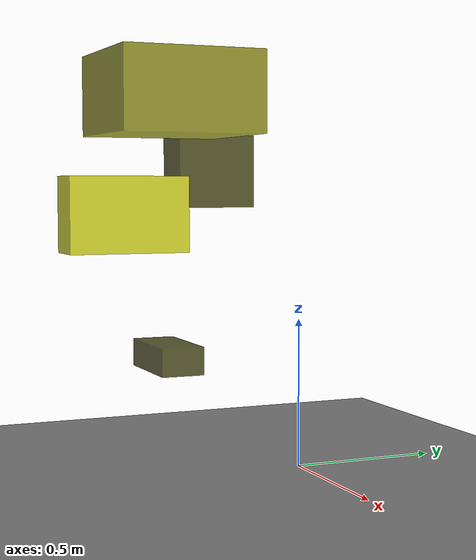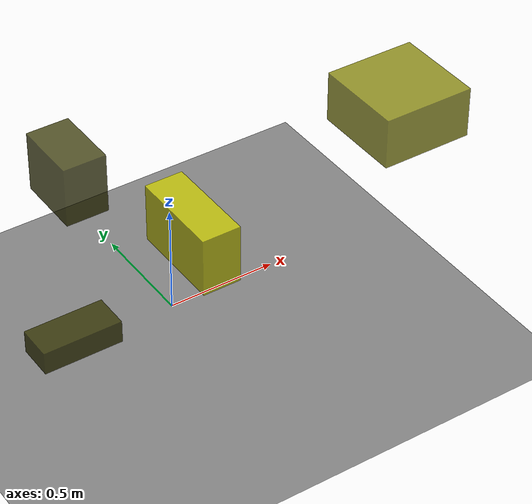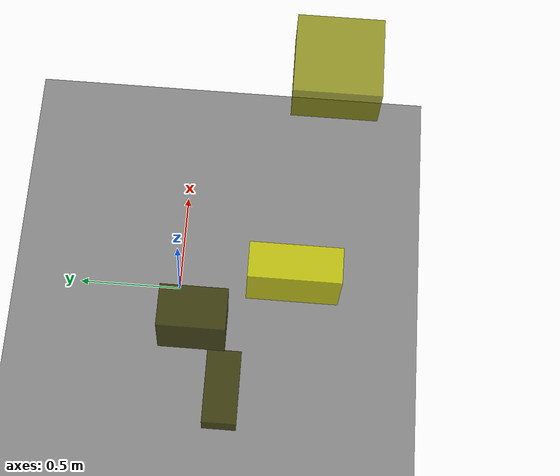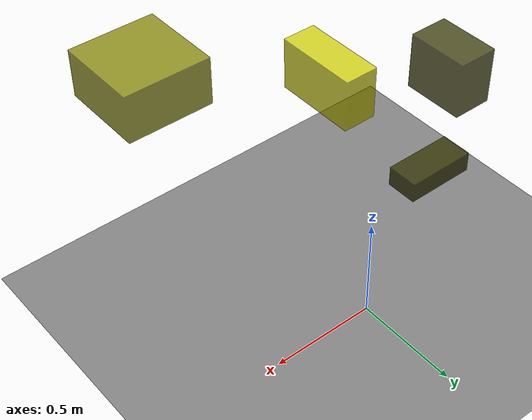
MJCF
<?xml version="1.0"?>
<mujoco model="obstacle_scene">
  <compiler angle="radian" coordinate="local"/>
  <option timestep="0.001" gravity="0 0 -9.81"/>

  <asset>
    <material name="obstacle_mat" rgba="0.8 0.8 0.0 0.8"/>
    <material name="ground_mat" rgba="0.5 0.5 0.5 1"/>
  </asset>

  <worldbody>
    <!-- Ground plane -->
    <geom name="ground" type="plane" size="3 3 0.1" material="ground_mat"/>

    <!-- Obstacles -->
    <body name="obstacle_0" pos="-0.605858 -0.255796 0.311865">
      <geom name="obs_0" type="box" size="0.173896 0.079418 0.051545" rgba="0.2 0.2 0.0 0.8"/>
    </body>
    <body name="obstacle_1" pos="0.625027 -0.661726 1.183889">
      <geom name="obs_1" type="box" size="0.191193 0.189357 0.107099" rgba="0.5 0.5 0.0 0.8"/>
    </body>
    <body name="obstacle_2" pos="-0.223372 -0.538284 0.851169">
      <geom name="obs_2" type="box" size="0.081491 0.202260 0.127171" rgba="0.8 0.8 0.0 0.8"/>
    </body>
    <body name="obstacle_3" pos="-0.517157 -0.123774 0.998415">
      <geom name="obs_3" type="box" size="0.090173 0.141901 0.129424" rgba="0.2 0.2 0.0 0.8"/>
    </body>
  </worldbody>
</mujoco>
